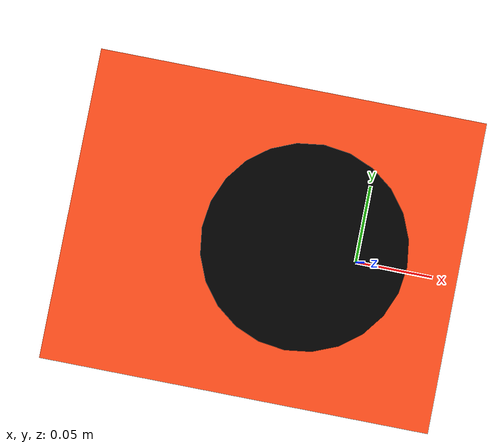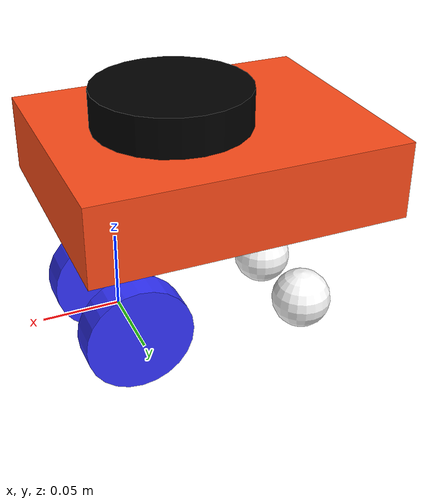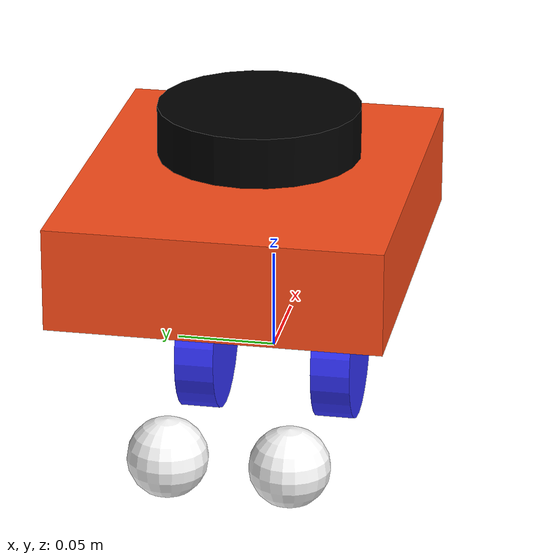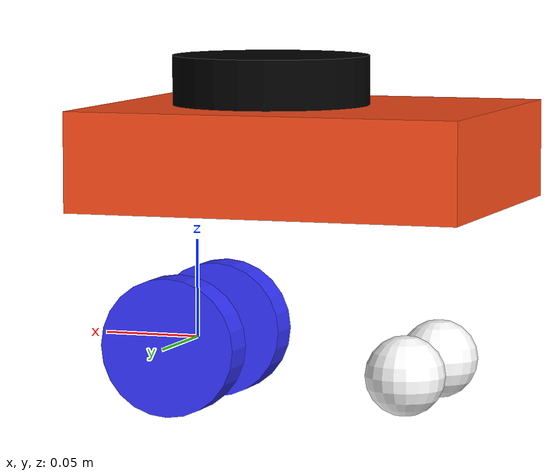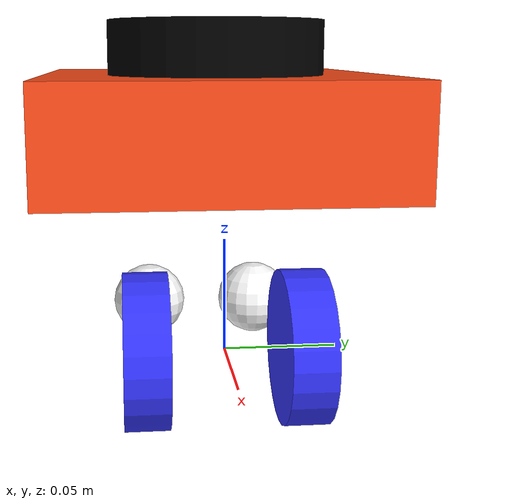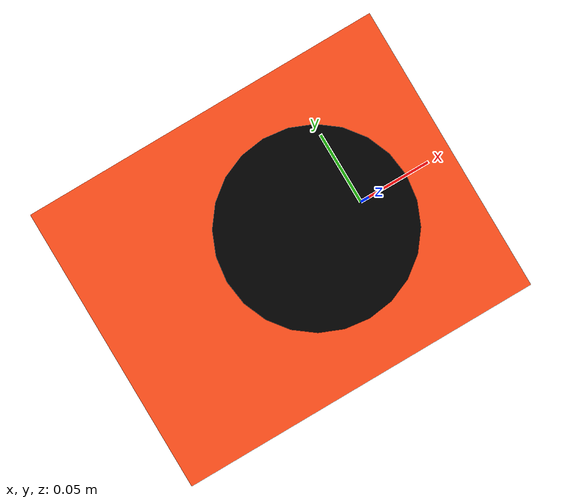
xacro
<?xml version="1.0"?>
<robot xmlns:xacro="http://www.ros.org/wiki/xacro"  name="robot">

    <xacro:arg name="sim_mode" default="true"/>

    <xacro:include filename="robot_core.xacro" />
    <xacro:include filename="lidar.xacro" />

        <xacro:include filename="gazebo_control.xacro" />

</robot>

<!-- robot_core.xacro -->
<robot xmlns:xacro="http://www.ros.org/wiki/xacro" >

    <xacro:include filename="inertial_macros.xacro"/>

    <xacro:property name="chassis_length" value="0.200"/>
    <xacro:property name="chassis_width" value="0.160"/>
    <xacro:property name="chassis_height" value="0.050"/>
    <xacro:property name="chassis_mass" value="1.0"/>
    <xacro:property name="chassis_offset_x" value="-0.06"/>
    <xacro:property name="chassis_offset_y" value="0"/>
    <xacro:property name="chassis_offset_z" value="0.095"/>
    <xacro:property name="wheel_radius" value="0.035"/>
    <xacro:property name="wheel_thickness" value="0.020"/>
    <xacro:property name="wheel_mass" value="0.05"/>
    <xacro:property name="wheel_offset_x" value="0.226"/>
    <xacro:property name="wheel_offset_y" value="0.035"/>
    <xacro:property name="wheel_offset_z" value="0.01"/>
    <xacro:property name="caster_wheel_radius" value="0.02"/>
    <xacro:property name="caster_wheel_mass" value="0.5"/>
    <xacro:property name="caster_wheel_offset_x" value="0.12"/>
    <xacro:property name="caster_wheel_offset_y" value="0.03"/>
    <xacro:property name="caster_wheel_offset_z" value="0.01"/>

    <material name="white">
        <color rgba="1 1 1 1" />
    </material>

    <material name="orange">
        <color rgba="1 0.3 0.1 1"/>
    </material>

    <material name="blue">
        <color rgba="0.2 0.2 1 1"/>
    </material>

    <material name="black">
        <color rgba="0 0 0 1"/>
    </material>

    <material name="red">
        <color rgba="1 0 0 1"/>
    </material>

    <!-- BASE LINK -->

    <link name="base_link">

    </link>

    <!-- BASE_FOOTPRINT LINK -->

    <joint name="base_footprint_joint" type="fixed">
        <parent link="base_link"/>
        <child link="base_footprint"/>
        <origin xyz="0 0 0" rpy="0 0 0"/>
    </joint>

    <link name="base_footprint">
    </link>

    <!-- CHASSIS LINK -->

    <joint name="chassis_joint" type="fixed">
        <parent link="base_link"/>
        <child link="chassis"/>
        <origin xyz="${chassis_offset_x} ${chassis_offset_y} ${chassis_offset_z}"/>
    </joint>

    <link name="chassis">
        <visual>
            <origin xyz="0 0 0"/>
            <geometry>
                <box size="${chassis_length} ${chassis_width} ${chassis_height}"/>
            </geometry>
            <material name="orange"/>
        </visual>
        <collision>
            <origin xyz="${chassis_length/2} 0 ${chassis_height/2}"/>
            <geometry>
                <box size="${chassis_length} ${chassis_width} ${chassis_height}"/>
            </geometry>
        </collision>
        <xacro:inertial_box mass="0.5" x="${chassis_length}" y="${chassis_width}" z="${chassis_height}">
            <origin xyz="${chassis_length/2} 0 ${chassis_height/2}" rpy="0 0 0"/>
        </xacro:inertial_box>
    </link>

    <gazebo reference="chassis">
        <material>Gazebo/Orange</material>
    </gazebo>

    <!-- LEFT WHEEL LINK -->

    <joint name="left_wheel_joint" type="continuous">
        <parent link="base_link"/>
        <child link="left_wheel"/>
        <origin xyz="0 ${wheel_offset_y} 0" rpy="-${pi/2} 0 0" />
        <axis xyz="0 0 1"/>
    </joint>

    <link name="left_wheel">
        <visual>
            <geometry>
                <cylinder radius="${wheel_radius}" length="${wheel_thickness}"/>
            </geometry>
            <material name="blue"/>
        </visual>
        <collision>
            <geometry>
                <sphere radius="${wheel_radius}"/>
            </geometry>
        </collision>
        <xacro:inertial_cylinder mass="${wheel_mass}" length="${wheel_thickness}" radius="${wheel_radius}">
            <origin xyz="0 0 0" rpy="0 0 0"/>
        </xacro:inertial_cylinder>
    </link>

    <gazebo reference="left_wheel">
        <material>Gazebo/Blue</material>
    </gazebo>

    <!-- RIGHT WHEEL LINK -->

    <joint name="right_wheel_joint" type="continuous">
        <parent link="base_link"/>
        <child link="right_wheel"/>
        <origin xyz="0 ${-wheel_offset_y} 0" rpy="${pi/2} 0 0" />
        <axis xyz="0 0 -1"/>
    </joint>

    <link name="right_wheel">
        <visual>
            <geometry>
                <cylinder radius="${wheel_radius}" length="${wheel_thickness}"/>
            </geometry>
            <material name="blue"/>
        </visual>
        <collision>
            <geometry>
                <sphere radius="${wheel_radius}"/>
            </geometry>
        </collision>
        <xacro:inertial_cylinder mass="${wheel_mass}" length="${wheel_thickness}" radius="${wheel_radius}">
            <origin xyz="0 0 0" rpy="0 0 0"/>
        </xacro:inertial_cylinder>
    </link>

    <gazebo reference="right_wheel">
        <material>Gazebo/Blue</material>
    </gazebo>

    <!-- LEFT CASTER WHEEL LINK -->
    <joint name="left_caster_wheel_joint" type="fixed">
        <parent link="base_link"/>
        <child link="left_caster_wheel"/>
        <origin xyz="${-caster_wheel_offset_x} ${caster_wheel_offset_y} ${-caster_wheel_offset_z}"/>
    </joint>

    <link name="left_caster_wheel">
        <visual>
            <geometry>
                <sphere radius="${caster_wheel_radius}"/>
            </geometry>
            <material name="white"/>
        </visual>
        <collision>
            <geometry>
                <sphere radius="${caster_wheel_radius}"/>
            </geometry>
        </collision>
        <xacro:inertial_sphere mass="${caster_wheel_mass}" radius="${caster_wheel_radius}">
            <origin xyz="0 0 0" rpy="0 0 0"/>
        </xacro:inertial_sphere>
    </link>

    <gazebo reference="left_caster_wheel">
        <material>Gazebo/White</material>
        <mu1 value="0.001"/>
        <mu2 value="0.001"/>
    </gazebo>

    <!-- RIGHT CASTER WHEEL LINK -->
    <joint name="right_caster_wheel_joint" type="fixed">
        <parent link="base_link"/>
        <child link="right_caster_wheel"/>
        <origin xyz="${-caster_wheel_offset_x} ${-caster_wheel_offset_y} ${-caster_wheel_offset_z}"/>
    </joint>

    <link name="right_caster_wheel">
        <visual>
            <geometry>
                <sphere radius="${caster_wheel_radius}"/>
            </geometry>
            <material name="white"/>
        </visual>
        <collision>
            <geometry>
                <sphere radius="${caster_wheel_radius}"/>
            </geometry>
        </collision>
        <xacro:inertial_sphere mass="${caster_wheel_mass}" radius="${caster_wheel_radius}">
            <origin xyz="0 0 0" rpy="0 0 0"/>
        </xacro:inertial_sphere>
    </link>

    <gazebo reference="right_caster_wheel">
        <material>Gazebo/White</material>
        <mu1 value="0.001"/>
        <mu2 value="0.001"/>
    </gazebo>

</robot>

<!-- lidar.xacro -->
<robot xmlns:xacro="http://www.ros.org/wiki/xacro" >

    <joint name="laser_joint" type="fixed">
        <parent link="chassis"/>
        <child link="laser_frame"/>
        <origin xyz="0.02 0 0.03" rpy="0 0 0"/>
    </joint>

    <link name="laser_frame">
        <visual>
            <geometry>
                <cylinder radius="0.05" length="0.04"/>
            </geometry>
            <material name="black"/>
        </visual>
        <collision>
            <geometry>
                <cylinder radius="0.05" length="0.04"/>
            </geometry>
        </collision>
        <xacro:inertial_cylinder mass="0.1" length="0.04" radius="0.05">
            <origin xyz="0 0 0" rpy="0 0 0"/>
        </xacro:inertial_cylinder>
    </link>

    <gazebo reference="laser_frame">
        <material>Gazebo/Black</material>

        <sensor name="laser" type="ray">
            <pose> 0 0 0 0 0 0 </pose>
            <visualize>false</visualize>
            <update_rate>10</update_rate>
            <ray>
                <scan>
                    <horizontal>
                        <samples>360</samples>
                        <min_angle>-3.14</min_angle>
                        <max_angle>3.14</max_angle>
                    </horizontal>
                </scan>
                <range>
                    <min>0.3</min>
                    <max>12</max>
                </range>
            </ray>
            <plugin name="laser_controller" filename="libgazebo_ros_ray_sensor.so">
                <ros>
                    <argument>~/out:=scan</argument>
                </ros>
                <output_type>sensor_msgs/LaserScan</output_type>
                <frame_name>laser_frame</frame_name>
            </plugin>
        </sensor>
    </gazebo>

</robot>
